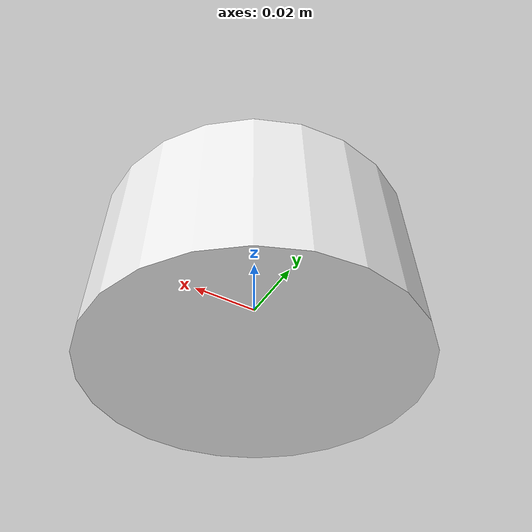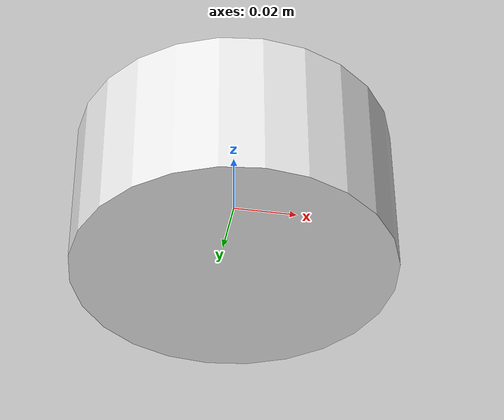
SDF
<?xml version='1.0'?>
<sdf version='1.6'>
    <model name='cylinder'>
        <link name='link'>
            <pose>0.0 0.0 0.0 0 -0 0</pose>
            <inertial>
                <!--NOTE: Uses limestone density (i.e 2000 kg/m^3) to calculate the mass
        see https://en.wikipedia.org/wiki/Limestone
        -->
                <mass>0.08192</mass>
                <inertia>
                    <ixx>3.49525333e-05</ixx>
                    <ixy>0</ixy>
                    <ixz>0</ixz>
                    <iyy>3.06926933e-05</iyy>
                    <iyz>0</iyz>
                    <izz>9.72117333e-06</izz>
                </inertia>
                <pose>0 0 0 0 -0 0</pose>
            </inertial>
            <self_collide>0</self_collide>
            <kinematic>0</kinematic>
            <enable_wind>0</enable_wind>
            <pose>0 0 0 0 -0 0</pose>
            <visual name='visual'>
                <geometry>
                    <cylinder>
                        <radius>0.05</radius>
                        <length>0.05</length>
                    </cylinder>
                </geometry>
                <material>
                    <script>
                        <uri>file://media/materials/scripts/gazebo.material</uri>
                        <name>Gazebo/White</name>
                    </script>
                    <shader type='pixel'/>
                </material>
                <pose>0 0 0 0 -0 0</pose>
                <transparency>0</transparency>
                <cast_shadows>1</cast_shadows>
            </visual>
            <collision name='collision'>
                <laser_retro>0</laser_retro>
                <max_contacts>10</max_contacts>
                <pose>0 0 0 0 -0 0</pose>
                <geometry>
                    <cylinder>
                        <radius>0.05</radius>
                        <length>0.05</length>
                    </cylinder>
                </geometry>
                <surface>
                    <!--NOTE: Uses dynamic friction of brick on a wood surface
          see https://www.engineeringtoolbox.com/friction-coefficients-d_778.html
          -->
                    <friction>
                        <ode>
                            <mu>0.6</mu>
                            <mu2>0.6</mu2>
                            <fdir1>0 0 0</fdir1>
                            <slip1>0</slip1>
                            <slip2>0</slip2>
                        </ode>
                        <torsional>
                            <coefficient>1</coefficient>
                            <patch_radius>0</patch_radius>
                            <surface_radius>0</surface_radius>
                            <use_patch_radius>1</use_patch_radius>
                            <ode>
                                <slip>0</slip>
                            </ode>
                        </torsional>
                    </friction>
                    <bounce>
                        <restitution_coefficient>0</restitution_coefficient>
                        <threshold>1e+06</threshold>
                    </bounce>
                    <contact>
                        <collide_without_contact>0</collide_without_contact>
                        <collide_without_contact_bitmask>1</collide_without_contact_bitmask>
                        <collide_bitmask>1</collide_bitmask>
                        <ode>
                            <soft_cfm>0</soft_cfm>
                            <soft_erp>0.2</soft_erp>
                            <kp>1e+13</kp>
                            <kd>1</kd>
                            <max_vel>0</max_vel>
                            <min_depth>0.003</min_depth>
                        </ode>
                        <bullet>
                            <split_impulse>1</split_impulse>
                            <split_impulse_penetration_threshold>-0.01</split_impulse_penetration_threshold>
                            <soft_cfm>0</soft_cfm>
                            <soft_erp>0.2</soft_erp>
                            <kp>1e+13</kp>
                            <kd>1</kd>
                        </bullet>
                    </contact>
                </surface>
            </collision>
        </link>
        <static>0</static>
        <allow_auto_disable>1</allow_auto_disable>
    </model>
</sdf>
